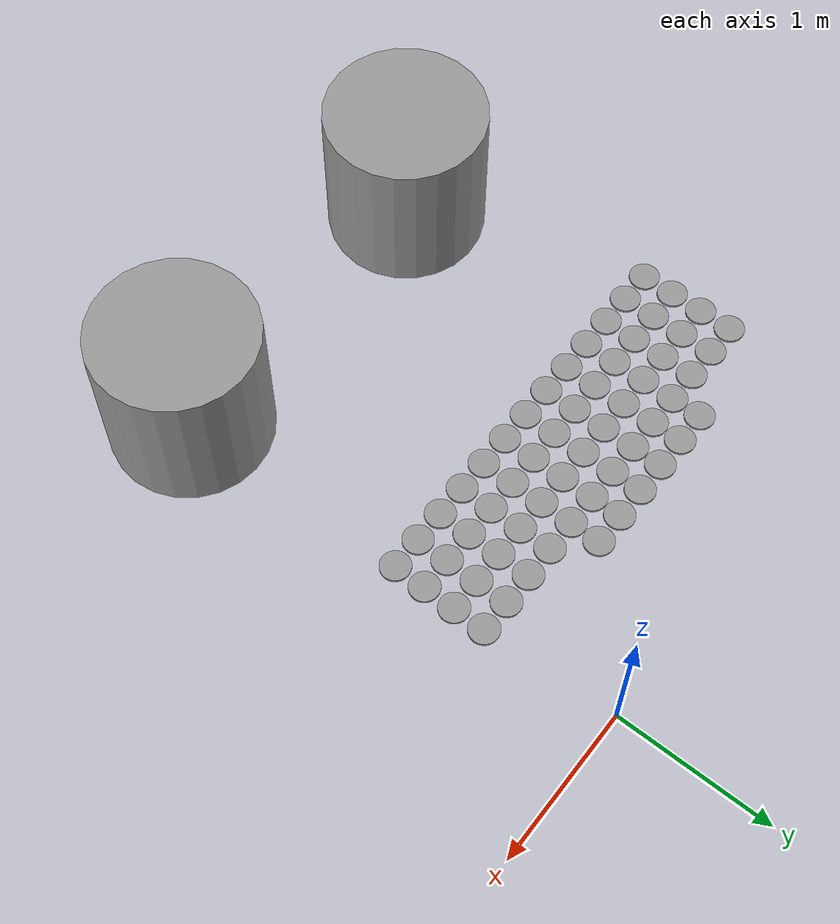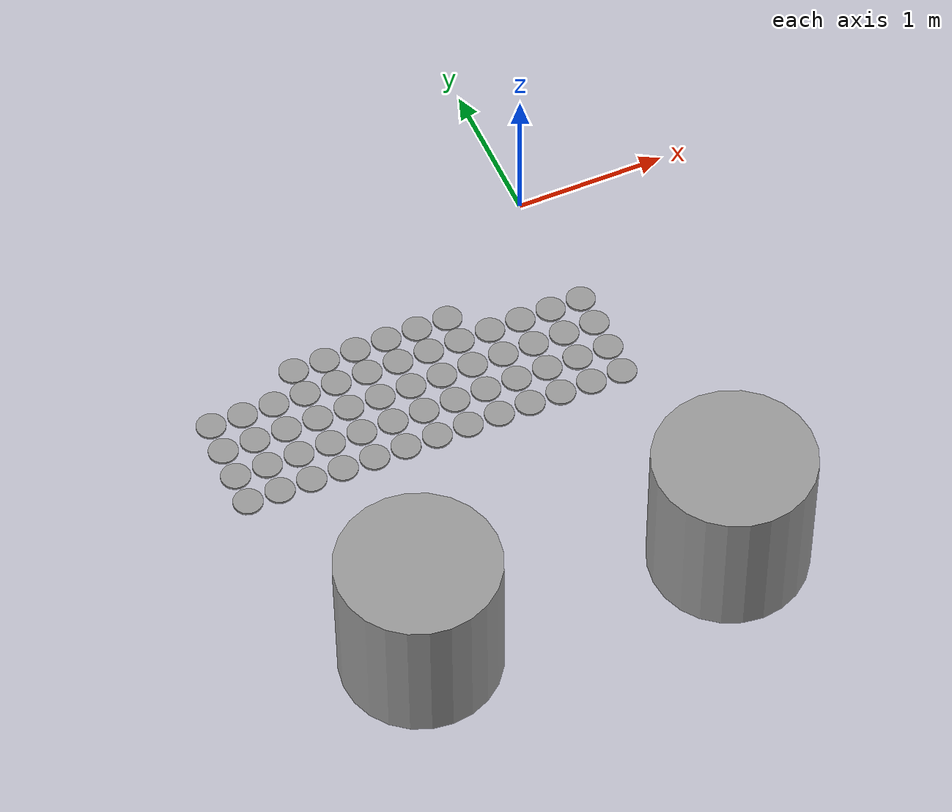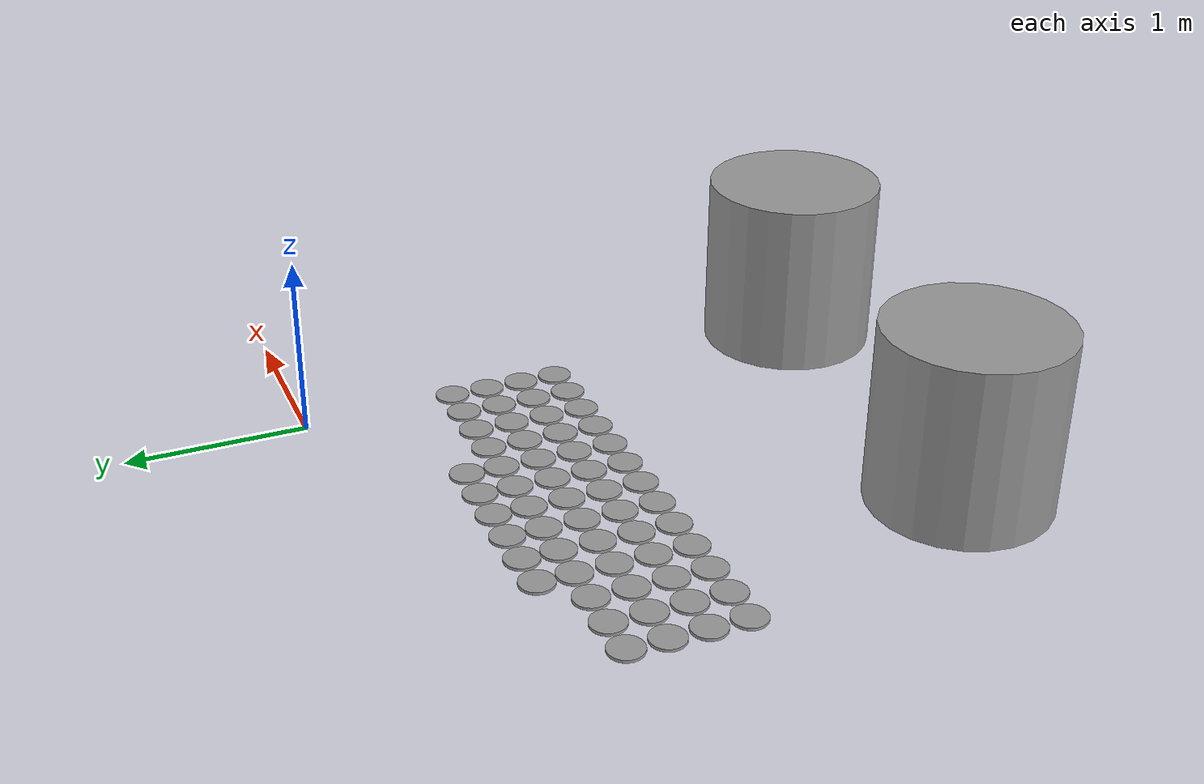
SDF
<sdf version="1.6">
 <world name="default">
  <model name="triple-I"><pose>-0.465032 -1.9092 0.030503 -0.000121 6.3e-05 0.005487</pose></model>
  <model name="unit_cylinder_clone_560">
   <pose>-2.48 -1.5 0.008117 0 -0 0</pose>
   <link name="link">
    <inertial>
     <mass>1</mass>
     <inertia><ixx>0.145833</ixx><ixy>0</ixy><ixz>0</ixz><iyy>0.145833</iyy><iyz>0</iyz><izz>0.125</izz></inertia>
    </inertial>
    <collision name="collision">
     <geometry><cylinder><radius>0.0950718</radius><length>0.0162339</length></cylinder></geometry>
     <max_contacts>5</max_contacts>
    </collision>
    <visual name="visual">
     <geometry><cylinder><radius>0.0950718</radius><length>0.0162339</length></cylinder></geometry>
     <material>
      <script><name>Gazebo/Grey</name><uri>file://media/materials/scripts/gazebo.material</uri></script>
     </material>
    </visual>
   </link>
  </model>
  <model name="unit_cylinder_clone_561">
   <pose>-2.48 -1.29 0.008117 0 -0 0</pose>
   <link name="link">
    <inertial>
     <mass>1</mass>
     <inertia><ixx>0.145833</ixx><ixy>0</ixy><ixz>0</ixz><iyy>0.145833</iyy><iyz>0</iyz><izz>0.125</izz></inertia>
    </inertial>
    <collision name="collision">
     <geometry><cylinder><radius>0.0950718</radius><length>0.0162339</length></cylinder></geometry>
     <max_contacts>5</max_contacts>
    </collision>
    <visual name="visual">
     <geometry><cylinder><radius>0.0950718</radius><length>0.0162339</length></cylinder></geometry>
     <material>
      <script><name>Gazebo/Grey</name><uri>file://media/materials/scripts/gazebo.material</uri></script>
     </material>
    </visual>
   </link>
  </model>
  <model name="unit_cylinder_clone_562">
   <pose>-2.48 -1.08 0.008117 0 -0 0</pose>
   <link name="link">
    <inertial>
     <mass>1</mass>
     <inertia><ixx>0.145833</ixx><ixy>0</ixy><ixz>0</ixz><iyy>0.145833</iyy><iyz>0</iyz><izz>0.125</izz></inertia>
    </inertial>
    <collision name="collision">
     <geometry><cylinder><radius>0.0950718</radius><length>0.0162339</length></cylinder></geometry>
     <max_contacts>5</max_contacts>
    </collision>
    <visual name="visual">
     <geometry><cylinder><radius>0.0950718</radius><length>0.0162339</length></cylinder></geometry>
     <material>
      <script><name>Gazebo/Grey</name><uri>file://media/materials/scripts/gazebo.material</uri></script>
     </material>
    </visual>
   </link>
  </model>
  <model name="unit_cylinder_clone_563">
   <pose>-2.48 -0.87 0.008117 0 -0 0</pose>
   <link name="link">
    <inertial>
     <mass>1</mass>
     <inertia><ixx>0.145833</ixx><ixy>0</ixy><ixz>0</ixz><iyy>0.145833</iyy><iyz>0</iyz><izz>0.125</izz></inertia>
    </inertial>
    <collision name="collision">
     <geometry><cylinder><radius>0.0950718</radius><length>0.0162339</length></cylinder></geometry>
     <max_contacts>5</max_contacts>
    </collision>
    <visual name="visual">
     <geometry><cylinder><radius>0.0950718</radius><length>0.0162339</length></cylinder></geometry>
     <material>
      <script><name>Gazebo/Grey</name><uri>file://media/materials/scripts/gazebo.material</uri></script>
     </material>
    </visual>
   </link>
  </model>
  <model name="unit_cylinder_clone_565">
   <pose>-2.27 -1.5 0.008117 0 -0 0</pose>
   <link name="link">
    <inertial>
     <mass>1</mass>
     <inertia><ixx>0.145833</ixx><ixy>0</ixy><ixz>0</ixz><iyy>0.145833</iyy><iyz>0</iyz><izz>0.125</izz></inertia>
    </inertial>
    <collision name="collision">
     <geometry><cylinder><radius>0.0950718</radius><length>0.0162339</length></cylinder></geometry>
     <max_contacts>5</max_contacts>
    </collision>
    <visual name="visual">
     <geometry><cylinder><radius>0.0950718</radius><length>0.0162339</length></cylinder></geometry>
     <material>
      <script><name>Gazebo/Grey</name><uri>file://media/materials/scripts/gazebo.material</uri></script>
     </material>
    </visual>
   </link>
  </model>
  <model name="unit_cylinder_clone_566">
   <pose>-2.27 -1.29 0.008117 0 -0 0</pose>
   <link name="link">
    <inertial>
     <mass>1</mass>
     <inertia><ixx>0.145833</ixx><ixy>0</ixy><ixz>0</ixz><iyy>0.145833</iyy><iyz>0</iyz><izz>0.125</izz></inertia>
    </inertial>
    <collision name="collision">
     <geometry><cylinder><radius>0.0950718</radius><length>0.0162339</length></cylinder></geometry>
     <max_contacts>5</max_contacts>
    </collision>
    <visual name="visual">
     <geometry><cylinder><radius>0.0950718</radius><length>0.0162339</length></cylinder></geometry>
     <material>
      <script><name>Gazebo/Grey</name><uri>file://media/materials/scripts/gazebo.material</uri></script>
     </material>
    </visual>
   </link>
  </model>
  <model name="unit_cylinder_clone_567">
   <pose>-2.27 -1.08 0.008117 0 -0 0</pose>
   <link name="link">
    <inertial>
     <mass>1</mass>
     <inertia><ixx>0.145833</ixx><ixy>0</ixy><ixz>0</ixz><iyy>0.145833</iyy><iyz>0</iyz><izz>0.125</izz></inertia>
    </inertial>
    <collision name="collision">
     <geometry><cylinder><radius>0.0950718</radius><length>0.0162339</length></cylinder></geometry>
     <max_contacts>5</max_contacts>
    </collision>
    <visual name="visual">
     <geometry><cylinder><radius>0.0950718</radius><length>0.0162339</length></cylinder></geometry>
     <material>
      <script><name>Gazebo/Grey</name><uri>file://media/materials/scripts/gazebo.material</uri></script>
     </material>
    </visual>
   </link>
  </model>
  <model name="unit_cylinder_clone_568">
   <pose>-2.27 -0.87 0.008117 0 -0 0</pose>
   <link name="link">
    <inertial>
     <mass>1</mass>
     <inertia><ixx>0.145833</ixx><ixy>0</ixy><ixz>0</ixz><iyy>0.145833</iyy><iyz>0</iyz><izz>0.125</izz></inertia>
    </inertial>
    <collision name="collision">
     <geometry><cylinder><radius>0.0950718</radius><length>0.0162339</length></cylinder></geometry>
     <max_contacts>5</max_contacts>
    </collision>
    <visual name="visual">
     <geometry><cylinder><radius>0.0950718</radius><length>0.0162339</length></cylinder></geometry>
     <material>
      <script><name>Gazebo/Grey</name><uri>file://media/materials/scripts/gazebo.material</uri></script>
     </material>
    </visual>
   </link>
  </model>
  <model name="unit_cylinder_clone_570">
   <pose>-2.06 -1.5 0.008117 0 -0 0</pose>
   <link name="link">
    <inertial>
     <mass>1</mass>
     <inertia><ixx>0.145833</ixx><ixy>0</ixy><ixz>0</ixz><iyy>0.145833</iyy><iyz>0</iyz><izz>0.125</izz></inertia>
    </inertial>
    <collision name="collision">
     <geometry><cylinder><radius>0.0950718</radius><length>0.0162339</length></cylinder></geometry>
     <max_contacts>5</max_contacts>
    </collision>
    <visual name="visual">
     <geometry><cylinder><radius>0.0950718</radius><length>0.0162339</length></cylinder></geometry>
     <material>
      <script><name>Gazebo/Grey</name><uri>file://media/materials/scripts/gazebo.material</uri></script>
     </material>
    </visual>
   </link>
  </model>
  <model name="unit_cylinder_clone_571">
   <pose>-2.06 -1.29 0.008117 0 -0 0</pose>
   <link name="link">
    <inertial>
     <mass>1</mass>
     <inertia><ixx>0.145833</ixx><ixy>0</ixy><ixz>0</ixz><iyy>0.145833</iyy><iyz>0</iyz><izz>0.125</izz></inertia>
    </inertial>
    <collision name="collision">
     <geometry><cylinder><radius>0.0950718</radius><length>0.0162339</length></cylinder></geometry>
     <max_contacts>5</max_contacts>
    </collision>
    <visual name="visual">
     <geometry><cylinder><radius>0.0950718</radius><length>0.0162339</length></cylinder></geometry>
     <material>
      <script><name>Gazebo/Grey</name><uri>file://media/materials/scripts/gazebo.material</uri></script>
     </material>
    </visual>
   </link>
  </model>
  <model name="unit_cylinder_clone_572">
   <pose>-2.06 -1.08 0.008117 0 -0 0</pose>
   <link name="link">
    <inertial>
     <mass>1</mass>
     <inertia><ixx>0.145833</ixx><ixy>0</ixy><ixz>0</ixz><iyy>0.145833</iyy><iyz>0</iyz><izz>0.125</izz></inertia>
    </inertial>
    <collision name="collision">
     <geometry><cylinder><radius>0.0950718</radius><length>0.0162339</length></cylinder></geometry>
     <max_contacts>5</max_contacts>
    </collision>
    <visual name="visual">
     <geometry><cylinder><radius>0.0950718</radius><length>0.0162339</length></cylinder></geometry>
     <material>
      <script><name>Gazebo/Grey</name><uri>file://media/materials/scripts/gazebo.material</uri></script>
     </material>
    </visual>
   </link>
  </model>
  <model name="unit_cylinder_clone_573">
   <pose>-2.06 -0.87 0.008117 0 -0 0</pose>
   <link name="link">
    <inertial>
     <mass>1</mass>
     <inertia><ixx>0.145833</ixx><ixy>0</ixy><ixz>0</ixz><iyy>0.145833</iyy><iyz>0</iyz><izz>0.125</izz></inertia>
    </inertial>
    <collision name="collision">
     <geometry><cylinder><radius>0.0950718</radius><length>0.0162339</length></cylinder></geometry>
     <max_contacts>5</max_contacts>
    </collision>
    <visual name="visual">
     <geometry><cylinder><radius>0.0950718</radius><length>0.0162339</length></cylinder></geometry>
     <material>
      <script><name>Gazebo/Grey</name><uri>file://media/materials/scripts/gazebo.material</uri></script>
     </material>
    </visual>
   </link>
  </model>
  <model name="unit_cylinder_clone_575">
   <pose>-1.85 -1.5 0.008117 0 -0 0</pose>
   <link name="link">
    <inertial>
     <mass>1</mass>
     <inertia><ixx>0.145833</ixx><ixy>0</ixy><ixz>0</ixz><iyy>0.145833</iyy><iyz>0</iyz><izz>0.125</izz></inertia>
    </inertial>
    <collision name="collision">
     <geometry><cylinder><radius>0.0950718</radius><length>0.0162339</length></cylinder></geometry>
     <max_contacts>5</max_contacts>
    </collision>
    <visual name="visual">
     <geometry><cylinder><radius>0.0950718</radius><length>0.0162339</length></cylinder></geometry>
     <material>
      <script><name>Gazebo/Grey</name><uri>file://media/materials/scripts/gazebo.material</uri></script>
     </material>
    </visual>
   </link>
  </model>
  <model name="unit_cylinder_clone_576">
   <pose>-1.85 -1.29 0.008117 0 -0 0</pose>
   <link name="link">
    <inertial>
     <mass>1</mass>
     <inertia><ixx>0.145833</ixx><ixy>0</ixy><ixz>0</ixz><iyy>0.145833</iyy><iyz>0</iyz><izz>0.125</izz></inertia>
    </inertial>
    <collision name="collision">
     <geometry><cylinder><radius>0.0950718</radius><length>0.0162339</length></cylinder></geometry>
     <max_contacts>5</max_contacts>
    </collision>
    <visual name="visual">
     <geometry><cylinder><radius>0.0950718</radius><length>0.0162339</length></cylinder></geometry>
     <material>
      <script><name>Gazebo/Grey</name><uri>file://media/materials/scripts/gazebo.material</uri></script>
     </material>
    </visual>
   </link>
  </model>
  <model name="unit_cylinder_clone_577">
   <pose>-1.85 -1.08 0.008117 0 -0 0</pose>
   <link name="link">
    <inertial>
     <mass>1</mass>
     <inertia><ixx>0.145833</ixx><ixy>0</ixy><ixz>0</ixz><iyy>0.145833</iyy><iyz>0</iyz><izz>0.125</izz></inertia>
    </inertial>
    <collision name="collision">
     <geometry><cylinder><radius>0.0950718</radius><length>0.0162339</length></cylinder></geometry>
     <max_contacts>5</max_contacts>
    </collision>
    <visual name="visual">
     <geometry><cylinder><radius>0.0950718</radius><length>0.0162339</length></cylinder></geometry>
     <material>
      <script><name>Gazebo/Grey</name><uri>file://media/materials/scripts/gazebo.material</uri></script>
     </material>
    </visual>
   </link>
  </model>
  <model name="unit_cylinder_clone_578">
   <pose>-1.85 -0.87 0.008117 0 -0 0</pose>
   <link name="link">
    <inertial>
     <mass>1</mass>
     <inertia><ixx>0.145833</ixx><ixy>0</ixy><ixz>0</ixz><iyy>0.145833</iyy><iyz>0</iyz><izz>0.125</izz></inertia>
    </inertial>
    <collision name="collision">
     <geometry><cylinder><radius>0.0950718</radius><length>0.0162339</length></cylinder></geometry>
     <max_contacts>5</max_contacts>
    </collision>
    <visual name="visual">
     <geometry><cylinder><radius>0.0950718</radius><length>0.0162339</length></cylinder></geometry>
     <material>
      <script><name>Gazebo/Grey</name><uri>file://media/materials/scripts/gazebo.material</uri></script>
     </material>
    </visual>
   </link>
  </model>
  <model name="unit_cylinder_clone_579">
   <pose>-1.85 -0.675077 0.008117 -0 -0 -0</pose>
   <link name="link">
    <inertial>
     <mass>1</mass>
     <inertia><ixx>0.145833</ixx><ixy>0</ixy><ixz>0</ixz><iyy>0.145833</iyy><iyz>0</iyz><izz>0.125</izz></inertia>
    </inertial>
    <collision name="collision">
     <geometry><cylinder><radius>0.0950718</radius><length>0.0162339</length></cylinder></geometry>
     <max_contacts>5</max_contacts>
    </collision>
    <visual name="visual">
     <geometry><cylinder><radius>0.0950718</radius><length>0.0162339</length></cylinder></geometry>
     <material>
      <script><name>Gazebo/Grey</name><uri>file://media/materials/scripts/gazebo.material</uri></script>
     </material>
    </visual>
   </link>
  </model>
  <model name="unit_cylinder_clone_580">
   <pose>-1.64 -1.5 0.008117 0 -0 0</pose>
   <link name="link">
    <inertial>
     <mass>1</mass>
     <inertia><ixx>0.145833</ixx><ixy>0</ixy><ixz>0</ixz><iyy>0.145833</iyy><iyz>0</iyz><izz>0.125</izz></inertia>
    </inertial>
    <collision name="collision">
     <geometry><cylinder><radius>0.0950718</radius><length>0.0162339</length></cylinder></geometry>
     <max_contacts>5</max_contacts>
    </collision>
    <visual name="visual">
     <geometry><cylinder><radius>0.0950718</radius><length>0.0162339</length></cylinder></geometry>
     <material>
      <script><name>Gazebo/Grey</name><uri>file://media/materials/scripts/gazebo.material</uri></script>
     </material>
    </visual>
   </link>
  </model>
  <model name="unit_cylinder_clone_581">
   <pose>-1.64 -1.29 0.008117 0 -0 0</pose>
   <link name="link">
    <inertial>
     <mass>1</mass>
     <inertia><ixx>0.145833</ixx><ixy>0</ixy><ixz>0</ixz><iyy>0.145833</iyy><iyz>0</iyz><izz>0.125</izz></inertia>
    </inertial>
    <collision name="collision">
     <geometry><cylinder><radius>0.0950718</radius><length>0.0162339</length></cylinder></geometry>
     <max_contacts>5</max_contacts>
    </collision>
    <visual name="visual">
     <geometry><cylinder><radius>0.0950718</radius><length>0.0162339</length></cylinder></geometry>
     <material>
      <script><name>Gazebo/Grey</name><uri>file://media/materials/scripts/gazebo.material</uri></script>
     </material>
    </visual>
   </link>
  </model>
  <model name="unit_cylinder_clone_582">
   <pose>-1.64 -1.08 0.008117 0 -0 0</pose>
   <link name="link">
    <inertial>
     <mass>1</mass>
     <inertia><ixx>0.145833</ixx><ixy>0</ixy><ixz>0</ixz><iyy>0.145833</iyy><iyz>0</iyz><izz>0.125</izz></inertia>
    </inertial>
    <collision name="collision">
     <geometry><cylinder><radius>0.0950718</radius><length>0.0162339</length></cylinder></geometry>
     <max_contacts>5</max_contacts>
    </collision>
    <visual name="visual">
     <geometry><cylinder><radius>0.0950718</radius><length>0.0162339</length></cylinder></geometry>
     <material>
      <script><name>Gazebo/Grey</name><uri>file://media/materials/scripts/gazebo.material</uri></script>
     </material>
    </visual>
   </link>
  </model>
  <model name="unit_cylinder_clone_583">
   <pose>-1.64 -0.87 0.008117 0 -0 0</pose>
   <link name="link">
    <inertial>
     <mass>1</mass>
     <inertia><ixx>0.145833</ixx><ixy>0</ixy><ixz>0</ixz><iyy>0.145833</iyy><iyz>0</iyz><izz>0.125</izz></inertia>
    </inertial>
    <collision name="collision">
     <geometry><cylinder><radius>0.0950718</radius><length>0.0162339</length></cylinder></geometry>
     <max_contacts>5</max_contacts>
    </collision>
    <visual name="visual">
     <geometry><cylinder><radius>0.0950718</radius><length>0.0162339</length></cylinder></geometry>
     <material>
      <script><name>Gazebo/Grey</name><uri>file://media/materials/scripts/gazebo.material</uri></script>
     </material>
    </visual>
   </link>
  </model>
  <model name="unit_cylinder_clone_584">
   <pose>-1.64 -0.675077 0.008117 -0 -0 -0</pose>
   <link name="link">
    <inertial>
     <mass>1</mass>
     <inertia><ixx>0.145833</ixx><ixy>0</ixy><ixz>0</ixz><iyy>0.145833</iyy><iyz>0</iyz><izz>0.125</izz></inertia>
    </inertial>
    <collision name="collision">
     <geometry><cylinder><radius>0.0950718</radius><length>0.0162339</length></cylinder></geometry>
     <max_contacts>5</max_contacts>
    </collision>
    <visual name="visual">
     <geometry><cylinder><radius>0.0950718</radius><length>0.0162339</length></cylinder></geometry>
     <material>
      <script><name>Gazebo/Grey</name><uri>file://media/materials/scripts/gazebo.material</uri></script>
     </material>
    </visual>
   </link>
  </model>
  <model name="unit_cylinder_clone_585">
   <pose>-1.43 -1.5 0.008117 0 -0 0</pose>
   <link name="link">
    <inertial>
     <mass>1</mass>
     <inertia><ixx>0.145833</ixx><ixy>0</ixy><ixz>0</ixz><iyy>0.145833</iyy><iyz>0</iyz><izz>0.125</izz></inertia>
    </inertial>
    <collision name="collision">
     <geometry><cylinder><radius>0.0950718</radius><length>0.0162339</length></cylinder></geometry>
     <max_contacts>5</max_contacts>
    </collision>
    <visual name="visual">
     <geometry><cylinder><radius>0.0950718</radius><length>0.0162339</length></cylinder></geometry>
     <material>
      <script><name>Gazebo/Grey</name><uri>file://media/materials/scripts/gazebo.material</uri></script>
     </material>
    </visual>
   </link>
  </model>
  <model name="unit_cylinder_clone_586">
   <pose>-1.43 -1.29 0.008117 0 -0 0</pose>
   <link name="link">
    <inertial>
     <mass>1</mass>
     <inertia><ixx>0.145833</ixx><ixy>0</ixy><ixz>0</ixz><iyy>0.145833</iyy><iyz>0</iyz><izz>0.125</izz></inertia>
    </inertial>
    <collision name="collision">
     <geometry><cylinder><radius>0.0950718</radius><length>0.0162339</length></cylinder></geometry>
     <max_contacts>5</max_contacts>
    </collision>
    <visual name="visual">
     <geometry><cylinder><radius>0.0950718</radius><length>0.0162339</length></cylinder></geometry>
     <material>
      <script><name>Gazebo/Grey</name><uri>file://media/materials/scripts/gazebo.material</uri></script>
     </material>
    </visual>
   </link>
  </model>
  <model name="unit_cylinder_clone_587">
   <pose>-1.43 -1.08 0.008117 0 -0 0</pose>
   <link name="link">
    <inertial>
     <mass>1</mass>
     <inertia><ixx>0.145833</ixx><ixy>0</ixy><ixz>0</ixz><iyy>0.145833</iyy><iyz>0</iyz><izz>0.125</izz></inertia>
    </inertial>
    <collision name="collision">
     <geometry><cylinder><radius>0.0950718</radius><length>0.0162339</length></cylinder></geometry>
     <max_contacts>5</max_contacts>
    </collision>
    <visual name="visual">
     <geometry><cylinder><radius>0.0950718</radius><length>0.0162339</length></cylinder></geometry>
     <material>
      <script><name>Gazebo/Grey</name><uri>file://media/materials/scripts/gazebo.material</uri></script>
     </material>
    </visual>
   </link>
  </model>
  <model name="unit_cylinder_clone_588">
   <pose>-1.43 -0.87 0.008117 0 -0 0</pose>
   <link name="link">
    <inertial>
     <mass>1</mass>
     <inertia><ixx>0.145833</ixx><ixy>0</ixy><ixz>0</ixz><iyy>0.145833</iyy><iyz>0</iyz><izz>0.125</izz></inertia>
    </inertial>
    <collision name="collision">
     <geometry><cylinder><radius>0.0950718</radius><length>0.0162339</length></cylinder></geometry>
     <max_contacts>5</max_contacts>
    </collision>
    <visual name="visual">
     <geometry><cylinder><radius>0.0950718</radius><length>0.0162339</length></cylinder></geometry>
     <material>
      <script><name>Gazebo/Grey</name><uri>file://media/materials/scripts/gazebo.material</uri></script>
     </material>
    </visual>
   </link>
  </model>
  <model name="unit_cylinder_clone_589">
   <pose>-1.43 -0.675077 0.008117 -0 -0 -0</pose>
   <link name="link">
    <inertial>
     <mass>1</mass>
     <inertia><ixx>0.145833</ixx><ixy>0</ixy><ixz>0</ixz><iyy>0.145833</iyy><iyz>0</iyz><izz>0.125</izz></inertia>
    </inertial>
    <collision name="collision">
     <geometry><cylinder><radius>0.0950718</radius><length>0.0162339</length></cylinder></geometry>
     <max_contacts>5</max_contacts>
    </collision>
    <visual name="visual">
     <geometry><cylinder><radius>0.0950718</radius><length>0.0162339</length></cylinder></geometry>
     <material>
      <script><name>Gazebo/Grey</name><uri>file://media/materials/scripts/gazebo.material</uri></script>
     </material>
    </visual>
   </link>
  </model>
  <model name="unit_cylinder_clone_590">
   <pose>-1.22 -1.5 0.008117 0 -0 0</pose>
   <link name="link">
    <inertial>
     <mass>1</mass>
     <inertia><ixx>0.145833</ixx><ixy>0</ixy><ixz>0</ixz><iyy>0.145833</iyy><iyz>0</iyz><izz>0.125</izz></inertia>
    </inertial>
    <collision name="collision">
     <geometry><cylinder><radius>0.0950718</radius><length>0.0162339</length></cylinder></geometry>
     <max_contacts>5</max_contacts>
    </collision>
    <visual name="visual">
     <geometry><cylinder><radius>0.0950718</radius><length>0.0162339</length></cylinder></geometry>
     <material>
      <script><name>Gazebo/Grey</name><uri>file://media/materials/scripts/gazebo.material</uri></script>
     </material>
    </visual>
   </link>
  </model>
  <model name="unit_cylinder_clone_591">
   <pose>-1.22 -1.29 0.008117 0 -0 0</pose>
   <link name="link">
    <inertial>
     <mass>1</mass>
     <inertia><ixx>0.145833</ixx><ixy>0</ixy><ixz>0</ixz><iyy>0.145833</iyy><iyz>0</iyz><izz>0.125</izz></inertia>
    </inertial>
    <collision name="collision">
     <geometry><cylinder><radius>0.0950718</radius><length>0.0162339</length></cylinder></geometry>
     <max_contacts>5</max_contacts>
    </collision>
    <visual name="visual">
     <geometry><cylinder><radius>0.0950718</radius><length>0.0162339</length></cylinder></geometry>
     <material>
      <script><name>Gazebo/Grey</name><uri>file://media/materials/scripts/gazebo.material</uri></script>
     </material>
    </visual>
   </link>
  </model>
  <model name="unit_cylinder_clone_592">
   <pose>-1.22 -1.08 0.008117 0 -0 0</pose>
   <link name="link">
    <inertial>
     <mass>1</mass>
     <inertia><ixx>0.145833</ixx><ixy>0</ixy><ixz>0</ixz><iyy>0.145833</iyy><iyz>0</iyz><izz>0.125</izz></inertia>
    </inertial>
    <collision name="collision">
     <geometry><cylinder><radius>0.0950718</radius><length>0.0162339</length></cylinder></geometry>
     <max_contacts>5</max_contacts>
    </collision>
    <visual name="visual">
     <geometry><cylinder><radius>0.0950718</radius><length>0.0162339</length></cylinder></geometry>
     <material>
      <script><name>Gazebo/Grey</name><uri>file://media/materials/scripts/gazebo.material</uri></script>
     </material>
    </visual>
   </link>
  </model>
  <model name="unit_cylinder_clone_593">
   <pose>-1.22 -0.87 0.008117 0 -0 0</pose>
   <link name="link">
    <inertial>
     <mass>1</mass>
     <inertia><ixx>0.145833</ixx><ixy>0</ixy><ixz>0</ixz><iyy>0.145833</iyy><iyz>0</iyz><izz>0.125</izz></inertia>
    </inertial>
    <collision name="collision">
     <geometry><cylinder><radius>0.0950718</radius><length>0.0162339</length></cylinder></geometry>
     <max_contacts>5</max_contacts>
    </collision>
    <visual name="visual">
     <geometry><cylinder><radius>0.0950718</radius><length>0.0162339</length></cylinder></geometry>
     <material>
      <script><name>Gazebo/Grey</name><uri>file://media/materials/scripts/gazebo.material</uri></script>
     </material>
    </visual>
   </link>
  </model>
  <model name="unit_cylinder_clone_594">
   <pose>-1.22 -0.675077 0.008117 -0 -0 -0</pose>
   <link name="link">
    <inertial>
     <mass>1</mass>
     <inertia><ixx>0.145833</ixx><ixy>0</ixy><ixz>0</ixz><iyy>0.145833</iyy><iyz>0</iyz><izz>0.125</izz></inertia>
    </inertial>
    <collision name="collision">
     <geometry><cylinder><radius>0.0950718</radius><length>0.0162339</length></cylinder></geometry>
     <max_contacts>5</max_contacts>
    </collision>
    <visual name="visual">
     <geometry><cylinder><radius>0.0950718</radius><length>0.0162339</length></cylinder></geometry>
     <material>
      <script><name>Gazebo/Grey</name><uri>file://media/materials/scripts/gazebo.material</uri></script>
     </material>
    </visual>
   </link>
  </model>
  <model name="unit_cylinder_clone_595">
   <pose>-1.01 -1.5 0.008117 0 -0 0</pose>
   <link name="link">
    <inertial>
     <mass>1</mass>
     <inertia><ixx>0.145833</ixx><ixy>0</ixy><ixz>0</ixz><iyy>0.145833</iyy><iyz>0</iyz><izz>0.125</izz></inertia>
    </inertial>
    <collision name="collision">
     <geometry><cylinder><radius>0.0950718</radius><length>0.0162339</length></cylinder></geometry>
     <max_contacts>5</max_contacts>
    </collision>
    <visual name="visual">
     <geometry><cylinder><radius>0.0950718</radius><length>0.0162339</length></cylinder></geometry>
     <material>
      <script><name>Gazebo/Grey</name><uri>file://media/materials/scripts/gazebo.material</uri></script>
     </material>
    </visual>
   </link>
  </model>
  <model name="unit_cylinder_clone_596">
   <pose>-1.01 -1.29 0.008117 0 -0 0</pose>
   <link name="link">
    <inertial>
     <mass>1</mass>
     <inertia><ixx>0.145833</ixx><ixy>0</ixy><ixz>0</ixz><iyy>0.145833</iyy><iyz>0</iyz><izz>0.125</izz></inertia>
    </inertial>
    <collision name="collision">
     <geometry><cylinder><radius>0.0950718</radius><length>0.0162339</length></cylinder></geometry>
     <max_contacts>5</max_contacts>
    </collision>
    <visual name="visual">
     <geometry><cylinder><radius>0.0950718</radius><length>0.0162339</length></cylinder></geometry>
     <material>
      <script><name>Gazebo/Grey</name><uri>file://media/materials/scripts/gazebo.material</uri></script>
     </material>
    </visual>
   </link>
  </model>
  <model name="unit_cylinder_clone_597">
   <pose>-1.01 -1.08 0.008117 0 -0 0</pose>
   <link name="link">
    <inertial>
     <mass>1</mass>
     <inertia><ixx>0.145833</ixx><ixy>0</ixy><ixz>0</ixz><iyy>0.145833</iyy><iyz>0</iyz><izz>0.125</izz></inertia>
    </inertial>
    <collision name="collision">
     <geometry><cylinder><radius>0.0950718</radius><length>0.0162339</length></cylinder></geometry>
     <max_contacts>5</max_contacts>
    </collision>
    <visual name="visual">
     <geometry><cylinder><radius>0.0950718</radius><length>0.0162339</length></cylinder></geometry>
     <material>
      <script><name>Gazebo/Grey</name><uri>file://media/materials/scripts/gazebo.material</uri></script>
     </material>
    </visual>
   </link>
  </model>
  <model name="unit_cylinder_clone_598">
   <pose>-1.01 -0.87 0.008117 0 -0 0</pose>
   <link name="link">
    <inertial>
     <mass>1</mass>
     <inertia><ixx>0.145833</ixx><ixy>0</ixy><ixz>0</ixz><iyy>0.145833</iyy><iyz>0</iyz><izz>0.125</izz></inertia>
    </inertial>
    <collision name="collision">
     <geometry><cylinder><radius>0.0950718</radius><length>0.0162339</length></cylinder></geometry>
     <max_contacts>5</max_contacts>
    </collision>
    <visual name="visual">
     <geometry><cylinder><radius>0.0950718</radius><length>0.0162339</length></cylinder></geometry>
     <material>
      <script><name>Gazebo/Grey</name><uri>file://media/materials/scripts/gazebo.material</uri></script>
     </material>
    </visual>
   </link>
  </model>
  <model name="unit_cylinder_clone_599">
   <pose>-1.01 -0.675077 0.008117 -0 -0 -0</pose>
   <link name="link">
    <inertial>
     <mass>1</mass>
     <inertia><ixx>0.145833</ixx><ixy>0</ixy><ixz>0</ixz><iyy>0.145833</iyy><iyz>0</iyz><izz>0.125</izz></inertia>
    </inertial>
    <collision name="collision">
     <geometry><cylinder><radius>0.0950718</radius><length>0.0162339</length></cylinder></geometry>
     <max_contacts>5</max_contacts>
    </collision>
    <visual name="visual">
     <geometry><cylinder><radius>0.0950718</radius><length>0.0162339</length></cylinder></geometry>
     <material>
      <script><name>Gazebo/Grey</name><uri>file://media/materials/scripts/gazebo.material</uri></script>
     </material>
    </visual>
   </link>
  </model>
  <model name="unit_cylinder_clone_600">
   <pose>-0.8 -1.5 0.008117 0 -0 0</pose>
   <link name="link">
    <inertial>
     <mass>1</mass>
     <inertia><ixx>0.145833</ixx><ixy>0</ixy><ixz>0</ixz><iyy>0.145833</iyy><iyz>0</iyz><izz>0.125</izz></inertia>
    </inertial>
    <collision name="collision">
     <geometry><cylinder><radius>0.0950718</radius><length>0.0162339</length></cylinder></geometry>
     <max_contacts>5</max_contacts>
    </collision>
    <visual name="visual">
     <geometry><cylinder><radius>0.0950718</radius><length>0.0162339</length></cylinder></geometry>
     <material>
      <script><name>Gazebo/Grey</name><uri>file://media/materials/scripts/gazebo.material</uri></script>
     </material>
    </visual>
   </link>
  </model>
  <model name="unit_cylinder_clone_601">
   <pose>-0.8 -1.29 0.008117 0 -0 0</pose>
   <link name="link">
    <inertial>
     <mass>1</mass>
     <inertia><ixx>0.145833</ixx><ixy>0</ixy><ixz>0</ixz><iyy>0.145833</iyy><iyz>0</iyz><izz>0.125</izz></inertia>
    </inertial>
    <collision name="collision">
     <geometry><cylinder><radius>0.0950718</radius><length>0.0162339</length></cylinder></geometry>
     <max_contacts>5</max_contacts>
    </collision>
    <visual name="visual">
     <geometry><cylinder><radius>0.0950718</radius><length>0.0162339</length></cylinder></geometry>
     <material>
      <script><name>Gazebo/Grey</name><uri>file://media/materials/scripts/gazebo.material</uri></script>
     </material>
    </visual>
   </link>
  </model>
  <model name="unit_cylinder_clone_602">
   <pose>-0.8 -1.08 0.008117 0 -0 0</pose>
   <link name="link">
    <inertial>
     <mass>1</mass>
     <inertia><ixx>0.145833</ixx><ixy>0</ixy><ixz>0</ixz><iyy>0.145833</iyy><iyz>0</iyz><izz>0.125</izz></inertia>
    </inertial>
    <collision name="collision">
     <geometry><cylinder><radius>0.0950718</radius><length>0.0162339</length></cylinder></geometry>
     <max_contacts>5</max_contacts>
    </collision>
    <visual name="visual">
     <geometry><cylinder><radius>0.0950718</radius><length>0.0162339</length></cylinder></geometry>
     <material>
      <script><name>Gazebo/Grey</name><uri>file://media/materials/scripts/gazebo.material</uri></script>
     </material>
    </visual>
   </link>
  </model>
  <model name="unit_cylinder_clone_603">
   <pose>-0.8 -0.87 0.008117 0 -0 0</pose>
   <link name="link">
    <inertial>
     <mass>1</mass>
     <inertia><ixx>0.145833</ixx><ixy>0</ixy><ixz>0</ixz><iyy>0.145833</iyy><iyz>0</iyz><izz>0.125</izz></inertia>
    </inertial>
    <collision name="collision">
     <geometry><cylinder><radius>0.0950718</radius><length>0.0162339</length></cylinder></geometry>
     <max_contacts>5</max_contacts>
    </collision>
    <visual name="visual">
     <geometry><cylinder><radius>0.0950718</radius><length>0.0162339</length></cylinder></geometry>
     <material>
      <script><name>Gazebo/Grey</name><uri>file://media/materials/scripts/gazebo.material</uri></script>
     </material>
    </visual>
   </link>
  </model>
  <model name="unit_cylinder_clone_604">
   <pose>-0.8 -0.675077 0.008117 -0 -0 -0</pose>
   <link name="link">
    <inertial>
     <mass>1</mass>
     <inertia><ixx>0.145833</ixx><ixy>0</ixy><ixz>0</ixz><iyy>0.145833</iyy><iyz>0</iyz><izz>0.125</izz></inertia>
    </inertial>
    <collision name="collision">
     <geometry><cylinder><radius>0.0950718</radius><length>0.0162339</length></cylinder></geometry>
     <max_contacts>5</max_contacts>
    </collision>
    <visual name="visual">
     <geometry><cylinder><radius>0.0950718</radius><length>0.0162339</length></cylinder></geometry>
     <material>
      <script><name>Gazebo/Grey</name><uri>file://media/materials/scripts/gazebo.material</uri></script>
     </material>
    </visual>
   </link>
  </model>
  <model name="unit_cylinder_clone_605">
   <pose>-0.59 -1.5 0.008117 0 -0 0</pose>
   <link name="link">
    <inertial>
     <mass>1</mass>
     <inertia><ixx>0.145833</ixx><ixy>0</ixy><ixz>0</ixz><iyy>0.145833</iyy><iyz>0</iyz><izz>0.125</izz></inertia>
    </inertial>
    <collision name="collision">
     <geometry><cylinder><radius>0.0950718</radius><length>0.0162339</length></cylinder></geometry>
     <max_contacts>5</max_contacts>
    </collision>
    <visual name="visual">
     <geometry><cylinder><radius>0.0950718</radius><length>0.0162339</length></cylinder></geometry>
     <material>
      <script><name>Gazebo/Grey</name><uri>file://media/materials/scripts/gazebo.material</uri></script>
     </material>
    </visual>
   </link>
  </model>
  <model name="unit_cylinder_clone_606">
   <pose>-0.59 -1.29 0.008117 0 -0 0</pose>
   <link name="link">
    <inertial>
     <mass>1</mass>
     <inertia><ixx>0.145833</ixx><ixy>0</ixy><ixz>0</ixz><iyy>0.145833</iyy><iyz>0</iyz><izz>0.125</izz></inertia>
    </inertial>
    <collision name="collision">
     <geometry><cylinder><radius>0.0950718</radius><length>0.0162339</length></cylinder></geometry>
     <max_contacts>5</max_contacts>
    </collision>
    <visual name="visual">
     <geometry><cylinder><radius>0.0950718</radius><length>0.0162339</length></cylinder></geometry>
     <material>
      <script><name>Gazebo/Grey</name><uri>file://media/materials/scripts/gazebo.material</uri></script>
     </material>
    </visual>
   </link>
  </model>
  <model name="unit_cylinder_clone_607">
   <pose>-0.59 -1.08 0.008117 0 -0 0</pose>
   <link name="link">
    <inertial>
     <mass>1</mass>
     <inertia><ixx>0.145833</ixx><ixy>0</ixy><ixz>0</ixz><iyy>0.145833</iyy><iyz>0</iyz><izz>0.125</izz></inertia>
    </inertial>
    <collision name="collision">
     <geometry><cylinder><radius>0.0950718</radius><length>0.0162339</length></cylinder></geometry>
     <max_contacts>5</max_contacts>
    </collision>
    <visual name="visual">
     <geometry><cylinder><radius>0.0950718</radius><length>0.0162339</length></cylinder></geometry>
     <material>
      <script><name>Gazebo/Grey</name><uri>file://media/materials/scripts/gazebo.material</uri></script>
     </material>
    </visual>
   </link>
  </model>
  <model name="unit_cylinder_clone_608">
   <pose>-0.59 -0.87 0.008117 0 -0 0</pose>
   <link name="link">
    <inertial>
     <mass>1</mass>
     <inertia><ixx>0.145833</ixx><ixy>0</ixy><ixz>0</ixz><iyy>0.145833</iyy><iyz>0</iyz><izz>0.125</izz></inertia>
    </inertial>
    <collision name="collision">
     <geometry><cylinder><radius>0.0950718</radius><length>0.0162339</length></cylinder></geometry>
     <max_contacts>5</max_contacts>
    </collision>
    <visual name="visual">
     <geometry><cylinder><radius>0.0950718</radius><length>0.0162339</length></cylinder></geometry>
     <material>
      <script><name>Gazebo/Grey</name><uri>file://media/materials/scripts/gazebo.material</uri></script>
     </material>
    </visual>
   </link>
  </model>
  <model name="unit_cylinder_clone_610">
   <pose>-0.38 -1.5 0.008117 0 -0 0</pose>
   <link name="link">
    <inertial>
     <mass>1</mass>
     <inertia><ixx>0.145833</ixx><ixy>0</ixy><ixz>0</ixz><iyy>0.145833</iyy><iyz>0</iyz><izz>0.125</izz></inertia>
    </inertial>
    <collision name="collision">
     <geometry><cylinder><radius>0.0950718</radius><length>0.0162339</length></cylinder></geometry>
     <max_contacts>5</max_contacts>
    </collision>
    <visual name="visual">
     <geometry><cylinder><radius>0.0950718</radius><length>0.0162339</length></cylinder></geometry>
     <material>
      <script><name>Gazebo/Grey</name><uri>file://media/materials/scripts/gazebo.material</uri></script>
     </material>
    </visual>
   </link>
  </model>
  <model name="unit_cylinder_clone_611">
   <pose>-0.38 -1.29 0.008117 0 -0 0</pose>
   <link name="link">
    <inertial>
     <mass>1</mass>
     <inertia><ixx>0.145833</ixx><ixy>0</ixy><ixz>0</ixz><iyy>0.145833</iyy><iyz>0</iyz><izz>0.125</izz></inertia>
    </inertial>
    <collision name="collision">
     <geometry><cylinder><radius>0.0950718</radius><length>0.0162339</length></cylinder></geometry>
     <max_contacts>5</max_contacts>
    </collision>
    <visual name="visual">
     <geometry><cylinder><radius>0.0950718</radius><length>0.0162339</length></cylinder></geometry>
     <material>
      <script><name>Gazebo/Grey</name><uri>file://media/materials/scripts/gazebo.material</uri></script>
     </material>
    </visual>
   </link>
  </model>
  <model name="unit_cylinder_clone_612">
   <pose>-0.38 -1.08 0.008117 0 -0 0</pose>
   <link name="link">
    <inertial>
     <mass>1</mass>
     <inertia><ixx>0.145833</ixx><ixy>0</ixy><ixz>0</ixz><iyy>0.145833</iyy><iyz>0</iyz><izz>0.125</izz></inertia>
    </inertial>
    <collision name="collision">
     <geometry><cylinder><radius>0.0950718</radius><length>0.0162339</length></cylinder></geometry>
     <max_contacts>5</max_contacts>
    </collision>
    <visual name="visual">
     <geometry><cylinder><radius>0.0950718</radius><length>0.0162339</length></cylinder></geometry>
     <material>
      <script><name>Gazebo/Grey</name><uri>file://media/materials/scripts/gazebo.material</uri></script>
     </material>
    </visual>
   </link>
  </model>
  <model name="unit_cylinder_clone_613">
   <pose>-0.38 -0.87 0.008117 0 -0 0</pose>
   <link name="link">
    <inertial>
     <mass>1</mass>
     <inertia><ixx>0.145833</ixx><ixy>0</ixy><ixz>0</ixz><iyy>0.145833</iyy><iyz>0</iyz><izz>0.125</izz></inertia>
    </inertial>
    <collision name="collision">
     <geometry><cylinder><radius>0.0950718</radius><length>0.0162339</length></cylinder></geometry>
     <max_contacts>5</max_contacts>
    </collision>
    <visual name="visual">
     <geometry><cylinder><radius>0.0950718</radius><length>0.0162339</length></cylinder></geometry>
     <material>
      <script><name>Gazebo/Grey</name><uri>file://media/materials/scripts/gazebo.material</uri></script>
     </material>
    </visual>
   </link>
  </model>
  <model name="unit_cylinder_clone_615">
   <pose>-0.17 -1.5 0.008117 0 -0 0</pose>
   <link name="link">
    <inertial>
     <mass>1</mass>
     <inertia><ixx>0.145833</ixx><ixy>0</ixy><ixz>0</ixz><iyy>0.145833</iyy><iyz>0</iyz><izz>0.125</izz></inertia>
    </inertial>
    <collision name="collision">
     <geometry><cylinder><radius>0.0950718</radius><length>0.0162339</length></cylinder></geometry>
     <max_contacts>5</max_contacts>
    </collision>
    <visual name="visual">
     <geometry><cylinder><radius>0.0950718</radius><length>0.0162339</length></cylinder></geometry>
     <material>
      <script><name>Gazebo/Grey</name><uri>file://media/materials/scripts/gazebo.material</uri></script>
     </material>
    </visual>
   </link>
  </model>
  <model name="unit_cylinder_clone_616">
   <pose>-0.17 -1.29 0.008117 0 -0 0</pose>
   <link name="link">
    <inertial>
     <mass>1</mass>
     <inertia><ixx>0.145833</ixx><ixy>0</ixy><ixz>0</ixz><iyy>0.145833</iyy><iyz>0</iyz><izz>0.125</izz></inertia>
    </inertial>
    <collision name="collision">
     <geometry><cylinder><radius>0.0950718</radius><length>0.0162339</length></cylinder></geometry>
     <max_contacts>5</max_contacts>
    </collision>
    <visual name="visual">
     <geometry><cylinder><radius>0.0950718</radius><length>0.0162339</length></cylinder></geometry>
     <material>
      <script><name>Gazebo/Grey</name><uri>file://media/materials/scripts/gazebo.material</uri></script>
     </material>
    </visual>
   </link>
  </model>
  <model name="unit_cylinder_clone_617">
   <pose>-0.17 -1.08 0.008117 0 -0 0</pose>
   <link name="link">
    <inertial>
     <mass>1</mass>
     <inertia><ixx>0.145833</ixx><ixy>0</ixy><ixz>0</ixz><iyy>0.145833</iyy><iyz>0</iyz><izz>0.125</izz></inertia>
    </inertial>
    <collision name="collision">
     <geometry><cylinder><radius>0.0950718</radius><length>0.0162339</length></cylinder></geometry>
     <max_contacts>5</max_contacts>
    </collision>
    <visual name="visual">
     <geometry><cylinder><radius>0.0950718</radius><length>0.0162339</length></cylinder></geometry>
     <material>
      <script><name>Gazebo/Grey</name><uri>file://media/materials/scripts/gazebo.material</uri></script>
     </material>
    </visual>
   </link>
  </model>
  <model name="unit_cylinder_clone_618">
   <pose>-0.17 -0.87 0.008117 0 -0 0</pose>
   <link name="link">
    <inertial>
     <mass>1</mass>
     <inertia><ixx>0.145833</ixx><ixy>0</ixy><ixz>0</ixz><iyy>0.145833</iyy><iyz>0</iyz><izz>0.125</izz></inertia>
    </inertial>
    <collision name="collision">
     <geometry><cylinder><radius>0.0950718</radius><length>0.0162339</length></cylinder></geometry>
     <max_contacts>5</max_contacts>
    </collision>
    <visual name="visual">
     <geometry><cylinder><radius>0.0950718</radius><length>0.0162339</length></cylinder></geometry>
     <material>
      <script><name>Gazebo/Grey</name><uri>file://media/materials/scripts/gazebo.material</uri></script>
     </material>
    </visual>
   </link>
  </model>
  <model name="unit_cylinder_clone_620">
   <pose>0.04 -1.5 0.008117 0 -0 0</pose>
   <link name="link">
    <inertial>
     <mass>1</mass>
     <inertia><ixx>0.145833</ixx><ixy>0</ixy><ixz>0</ixz><iyy>0.145833</iyy><iyz>0</iyz><izz>0.125</izz></inertia>
    </inertial>
    <collision name="collision">
     <geometry><cylinder><radius>0.0950718</radius><length>0.0162339</length></cylinder></geometry>
     <max_contacts>5</max_contacts>
    </collision>
    <visual name="visual">
     <geometry><cylinder><radius>0.0950718</radius><length>0.0162339</length></cylinder></geometry>
     <material>
      <script><name>Gazebo/Grey</name><uri>file://media/materials/scripts/gazebo.material</uri></script>
     </material>
    </visual>
   </link>
  </model>
  <model name="unit_cylinder_clone_621">
   <pose>0.04 -1.29 0.008117 0 -0 0</pose>
   <link name="link">
    <inertial>
     <mass>1</mass>
     <inertia><ixx>0.145833</ixx><ixy>0</ixy><ixz>0</ixz><iyy>0.145833</iyy><iyz>0</iyz><izz>0.125</izz></inertia>
    </inertial>
    <collision name="collision">
     <geometry><cylinder><radius>0.0950718</radius><length>0.0162339</length></cylinder></geometry>
     <max_contacts>5</max_contacts>
    </collision>
    <visual name="visual">
     <geometry><cylinder><radius>0.0950718</radius><length>0.0162339</length></cylinder></geometry>
     <material>
      <script><name>Gazebo/Grey</name><uri>file://media/materials/scripts/gazebo.material</uri></script>
     </material>
    </visual>
   </link>
  </model>
  <model name="unit_cylinder_clone_622">
   <pose>0.04 -1.08 0.008117 0 -0 0</pose>
   <link name="link">
    <inertial>
     <mass>1</mass>
     <inertia><ixx>0.145833</ixx><ixy>0</ixy><ixz>0</ixz><iyy>0.145833</iyy><iyz>0</iyz><izz>0.125</izz></inertia>
    </inertial>
    <collision name="collision">
     <geometry><cylinder><radius>0.0950718</radius><length>0.0162339</length></cylinder></geometry>
     <max_contacts>5</max_contacts>
    </collision>
    <visual name="visual">
     <geometry><cylinder><radius>0.0950718</radius><length>0.0162339</length></cylinder></geometry>
     <material>
      <script><name>Gazebo/Grey</name><uri>file://media/materials/scripts/gazebo.material</uri></script>
     </material>
    </visual>
   </link>
  </model>
  <model name="unit_cylinder_clone_623">
   <pose>0.04 -0.87 0.008117 0 -0 0</pose>
   <link name="link">
    <inertial>
     <mass>1</mass>
     <inertia><ixx>0.145833</ixx><ixy>0</ixy><ixz>0</ixz><iyy>0.145833</iyy><iyz>0</iyz><izz>0.125</izz></inertia>
    </inertial>
    <collision name="collision">
     <geometry><cylinder><radius>0.0950718</radius><length>0.0162339</length></cylinder></geometry>
     <max_contacts>5</max_contacts>
    </collision>
    <visual name="visual">
     <geometry><cylinder><radius>0.0950718</radius><length>0.0162339</length></cylinder></geometry>
     <material>
      <script><name>Gazebo/Grey</name><uri>file://media/materials/scripts/gazebo.material</uri></script>
     </material>
    </visual>
   </link>
  </model>
  <model name="unit_cylinder_12">
   <pose>0.044864 -3.03465 0.5 0 -0 0</pose>
   <link name="link">
    <inertial>
     <mass>1</mass>
     <inertia><ixx>0.145833</ixx><ixy>0</ixy><ixz>0</ixz><iyy>0.145833</iyy><iyz>0</iyz><izz>0.125</izz></inertia>
    </inertial>
    <collision name="collision">
     <geometry><cylinder><radius>0.5</radius><length>1</length></cylinder></geometry>
    </collision>
    <visual name="visual">
     <geometry><cylinder><radius>0.5</radius><length>1</length></cylinder></geometry>
     <material>
      <script><name>Gazebo/Grey</name><uri>file://media/materials/scripts/gazebo.material</uri></script>
     </material>
    </visual>
   </link>
  </model>
  <model name="unit_cylinder_13">
   <pose>-1.95459 -2.98042 0.5 0 -0 0</pose>
   <link name="link">
    <inertial>
     <mass>1</mass>
     <inertia><ixx>0.145833</ixx><ixy>0</ixy><ixz>0</ixz><iyy>0.145833</iyy><iyz>0</iyz><izz>0.125</izz></inertia>
    </inertial>
    <collision name="collision">
     <geometry><cylinder><radius>0.5</radius><length>1</length></cylinder></geometry>
    </collision>
    <visual name="visual">
     <geometry><cylinder><radius>0.5</radius><length>1</length></cylinder></geometry>
     <material>
      <script><name>Gazebo/Grey</name><uri>file://media/materials/scripts/gazebo.material</uri></script>
     </material>
    </visual>
   </link>
  </model>
 </world>
</sdf>
